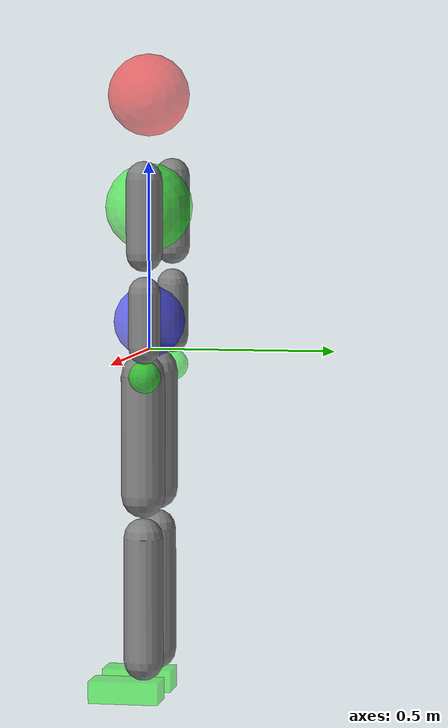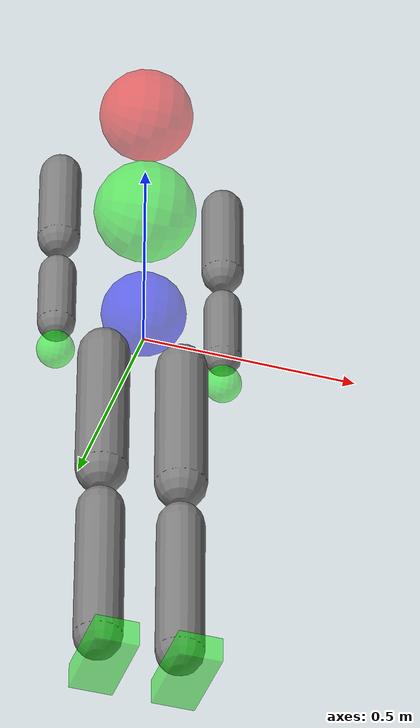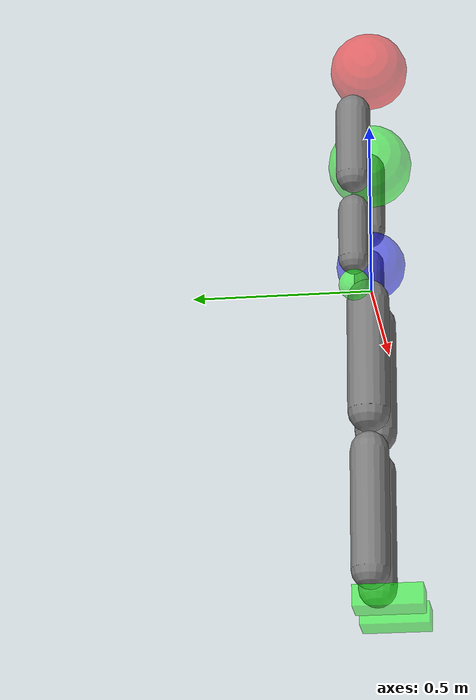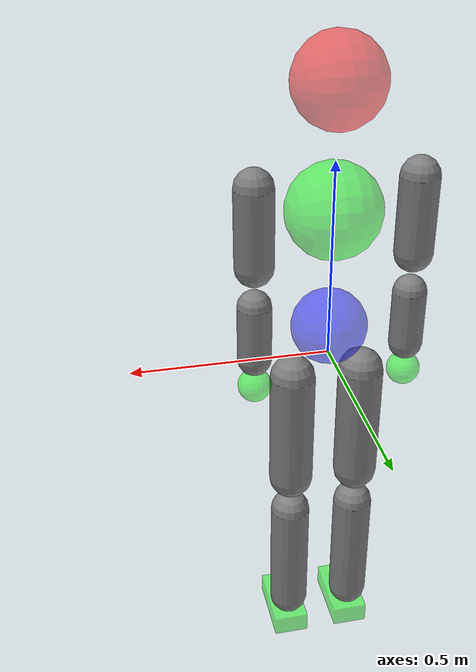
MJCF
<mujoco model="dumpUrdf">
    <compiler angle="radian" />
    <size njmax="500" nconmax="100" />
    <worldbody>
        <body name="root_1" pos="0 0 0" euler="0 -1.57079633 -1.57079633">
            <joint name="root_1" type="free" />
            <geom pos="0 0.0746667 0" type="sphere" size="0.096" rgba="0 0 1 0.5" />
            <body name="chest_1" pos="0 0.2518944 0">
                <joint name="chest_1" pos="0 0 0" type="ball" />
                <geom pos="0 0.128 0" type="sphere" size="0.117333" rgba="0 1 0 0.5" />
                <body name="neck_1" pos="0 0.238820267 0">
                    <joint name="neck_1" pos="0 0 0" type="ball" />
                    <geom pos="0 0.18667 0" type="sphere" size="0.109333" rgba="1 0 0 0.5" />
                </body>
                <body name="right_shoulder_1" pos="-.0256533 0.259733 0.19531733">
                    <joint name="right_shoulder_1" pos="0 0 0" type="ball" />
                    <geom pos="0 -0.14933 0" quat="0.707107 -0.707107 0 0" type="capsule" size="0.048 0.096" />
                    <body name="right_elbow_1" pos="0 -0.2931066 0">
                        <joint name="right_elbow_1" pos="0 0 0" axis="0 0 1" limited="true" range="0 3.14" />
                        <geom pos="0 -0.128 0" quat="0.707107 -0.707107 0 0" type="capsule" size="0.04266 0.072" />
                        <body name="right_wrist_1" pos="0 -0.27621066 0">
                            <geom type="sphere" size="0.04266" rgba="0 1 0 0.5" />
                        </body>
                    </body>
                </body>
                <body name="left_shoulder_1" pos="-0.0256533 0.259733 -0.19531733">
                    <joint name="left_shoulder_1" pos="0 0 0" type="ball" />
                    <geom pos="0 -0.14933 0" quat="0.707107 -0.707107 0 0" type="capsule" size="0.048 0.096" />
                    <body name="left_elbow_1" pos="0 -0.2931066 0">
                        <joint name="left_elbow_1" pos="0 0 0" axis="0 0 1" limited="true" range="0 3.14" />
                        <geom pos="0 -0.128 0" quat="0.707107 -0.707107 0 0" type="capsule" size="0.04266 0.072" />
                        <body name="left_wrist_1" pos="0 -0.27621066 0">
                            <geom type="sphere" size="0.04266" rgba="0 1 0 0.5" />
                        </body>
                    </body>
                </body>
            </body>
            <body name="right_hip_1" pos="0 0 0.090546133">
                <joint name="right_hip_1" pos="0 0 0" type="ball" />
                <geom pos="0 -0.224 0" quat="0.707107 -0.707107 0 0" type="capsule" size="0.05866 0.16" />
                <body name="right_knee_1" pos="0 -0.449648 0">
                    <joint name="right_knee_1" pos="0 0 0" axis="0 0 1" limited="true" range="-3.14 0" />
                    <geom pos="0 -0.2133 0" quat="0.707107 -0.707107 0 0" type="capsule" size="0.0533 0.16533" />
                    <body name="right_ankle_1" pos="0 -0.43719466 0">
                        <joint name="right_ankle_1" pos="0 0 0" type="ball" />
                        <geom pos="0.048 -0.024 0" type="box" size="0.0944 0.02933 0.048" rgba="0 1 0 0.5" />
                    </body>
                </body>
            </body>
            <body name="left_hip_1" pos="0 0 -0.090546133">
                <joint name="left_hip_1" pos="0 0 0" type="ball" />
                <geom pos="0 -0.224 0" quat="0.707107 -0.707107 0 0" type="capsule" size="0.05866 0.16" />
                <body name="left_knee_1" pos="0 -0.449648 0">
                    <joint name="left_knee_1" pos="0 0 0" axis="0 0 1" limited="true" range="-3.14 0" />
                    <geom pos="0 -0.2133 0" quat="0.707107 -0.707107 0 0" type="capsule" size="0.0533 0.16533" />
                    <body name="left_ankle_1" pos="0 -0.43719466 0">
                        <joint name="left_ankle_1" pos="0 0 0" type="ball" />
                        <geom pos="0.048 -0.024 0" type="box" size="0.0944 0.02933 0.048" rgba="0 1 0 0.5" />
                    </body>
                </body>
            </body>
        </body>
    </worldbody>
</mujoco>
